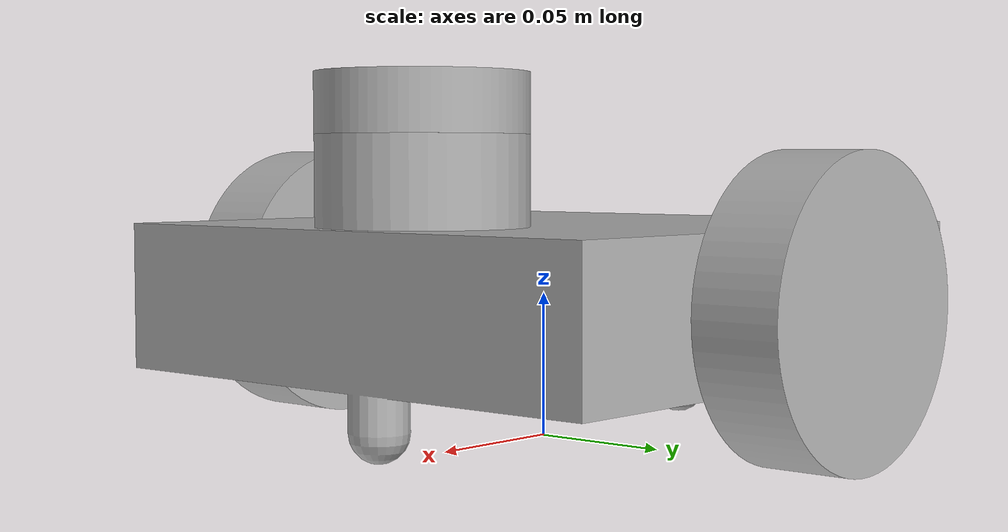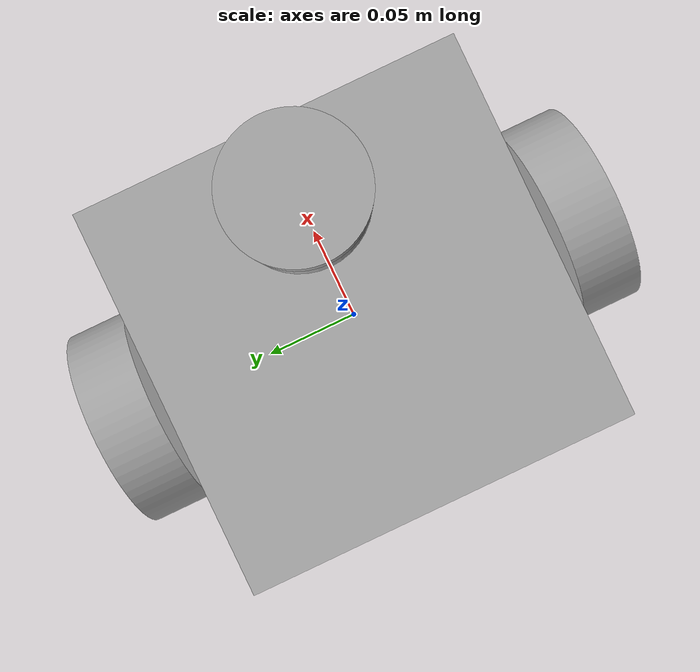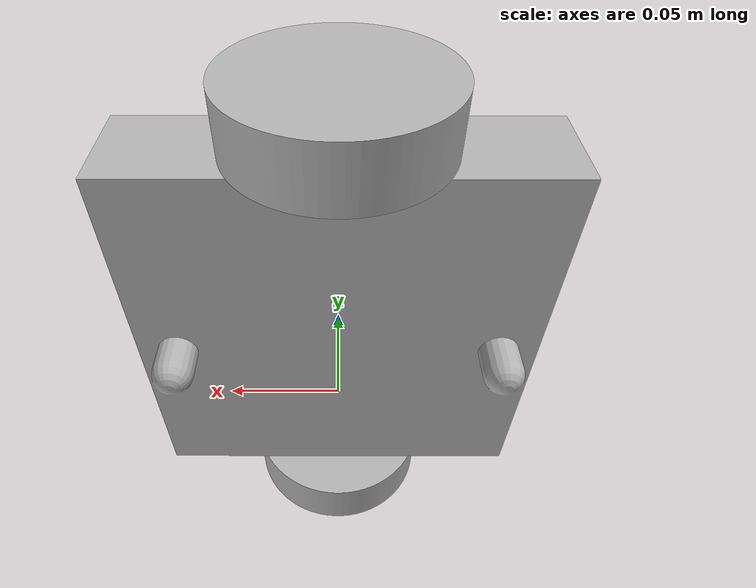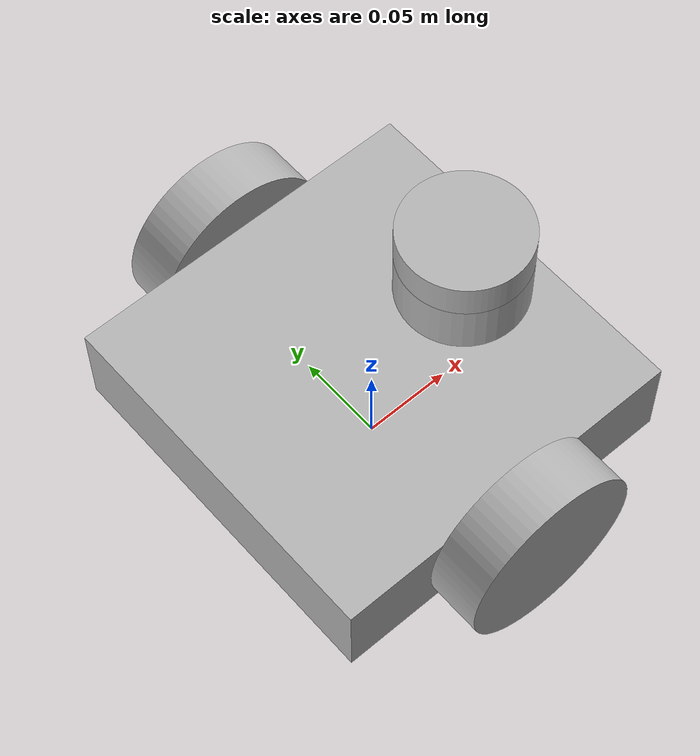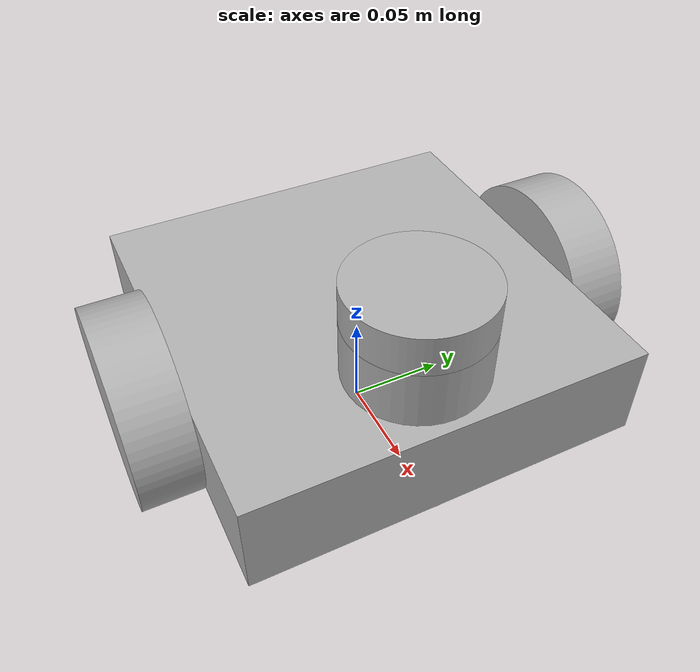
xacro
<?xml version="1.0" ?>
<robot name="amr" xmlns:xacro="http://www.ros.org/wiki/xacro">

  <xacro:include filename="$(find amr)/urdf/materials.xacro" />
  <xacro:include filename="$(find amr)/urdf/robot.trans" />
  <xacro:include filename="$(find amr)/urdf/diff_drive_plugin.xacro" />
  <xacro:include filename="$(find amr)/urdf/lidar_plugin.xacro" />

  <link name="base_link">
    <inertial>
      <origin xyz="0.0032536371479730836 1.7087196595133478e-17 0.05193914806588865" rpy="0 0 0"/>
      <mass value="16.713176720752102"/>
      <inertia ixx="0.057482" iyy="0.061252" izz="0.108997" ixy="0.0" iyz="0.0" ixz="-0.00207"/>
    </inertial>
    <visual>
      <origin xyz="0 0 0" rpy="0 0 0"/>
      <geometry>
        <mesh filename="file://$(find amr)/meshes/base_link.stl" scale="0.001 0.001 0.001"/>
      </geometry>
      <material name="silver"/>
    </visual>
    <collision>
      <origin xyz="0 0 0" rpy="0 0 0"/>
      <geometry>
        <mesh filename="file://$(find amr)/meshes/base_link.stl" scale="0.001 0.001 0.001"/>
      </geometry>
    </collision>
  </link>
  <link name="lidar_1">
    <inertial>
      <origin xyz="0.0 0.0 0.010000000000000009" rpy="0 0 0"/>
      <mass value="0.6042068071016571"/>
      <inertia ixx="0.000205" iyy="0.000205" izz="0.00037" ixy="-0.0" iyz="-0.0" ixz="0.0"/>
    </inertial>
    <visual>
      <origin xyz="-0.06 -0.0 -0.105" rpy="0 0 0"/>
      <geometry>
        <mesh filename="file://$(find amr)/meshes/lidar_1.stl" scale="0.001 0.001 0.001"/>
      </geometry>
      <material name="silver"/>
    </visual>
    <collision>
      <origin xyz="-0.06 -0.0 -0.105" rpy="0 0 0"/>
      <geometry>
        <mesh filename="file://$(find amr)/meshes/lidar_1.stl" scale="0.001 0.001 0.001"/>
      </geometry>
    </collision>
  </link>
  <link name="right_wheel_1">
    <inertial>
      <origin xyz="9.650038500203382e-18 -0.015000000000000013 6.938893903907228e-18" rpy="0 0 0"/>
      <mass value="1.8496126748009902"/>
      <inertia ixx="0.001295" iyy="0.002312" izz="0.001295" ixy="-0.0" iyz="0.0" ixz="0.0"/>
    </inertial>
    <visual>
      <origin xyz="-0.0 0.1 -0.05" rpy="0 0 0"/>
      <geometry>
        <mesh filename="file://$(find amr)/meshes/right_wheel_1.stl" scale="0.001 0.001 0.001"/>
      </geometry>
      <material name="silver"/>
    </visual>
    <collision>
      <origin xyz="-0.0 0.1 -0.05" rpy="0 0 0"/>
      <geometry>
        <mesh filename="file://$(find amr)/meshes/right_wheel_1.stl" scale="0.001 0.001 0.001"/>
      </geometry>
    </collision>
  </link>
  <link name="left_wheel_1">
    <inertial>
      <origin xyz="9.650038500203382e-18 0.014999999999999972 6.938893903907228e-18" rpy="0 0 0"/>
      <mass value="1.8496126748009902"/>
      <inertia ixx="0.001295" iyy="0.002312" izz="0.001295" ixy="0.0" iyz="-0.0" ixz="0.0"/>
    </inertial>
    <visual>
      <origin xyz="-0.0 -0.1 -0.05" rpy="0 0 0"/>
      <geometry>
        <mesh filename="file://$(find amr)/meshes/left_wheel_1.stl" scale="0.001 0.001 0.001"/>
      </geometry>
      <material name="silver"/>
    </visual>
    <collision>
      <origin xyz="-0.0 -0.1 -0.05" rpy="0 0 0"/>
      <geometry>
        <mesh filename="file://$(find amr)/meshes/left_wheel_1.stl" scale="0.001 0.001 0.001"/>
      </geometry>
    </collision>
  </link>
  <link name="base_footprint"></link>

  <joint name="Rigid_1" type="fixed">
    <origin xyz="0.06 0.0 0.105" rpy="0 0 0"/>
    <parent link="base_link"/>
    <child link="lidar_1"/>
  </joint>
  <joint name="Revolute2" type="continuous">
    <origin xyz="0.0 -0.1 0.05" rpy="0 0 0"/>
    <parent link="base_link"/>
    <child link="right_wheel_1"/>
    <axis xyz="0.0 1.0 0.0"/>
  </joint>
  <joint name="Revolute3" type="continuous">
    <origin xyz="0.0 0.1 0.05" rpy="0 0 0"/>
    <parent link="base_link"/>
    <child link="left_wheel_1"/>
    <axis xyz="0.0 1.0 0.0"/>
  </joint>
  <joint name="base_footprint_joint" type="fixed">
    <origin xyz="0 0 0" rpy="0 0 0"/>
    <parent link="base_link"/>
    <child link="base_footprint"/>
  </joint>

</robot>

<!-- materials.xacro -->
<robot name="amr" xmlns:xacro="http://www.ros.org/wiki/xacro" >
  <material name="silver">
    <color rgba="0.700 0.700 0.700 1.000"/>
  </material>
  <gazebo>
    <plugin name="control" filename="libgazebo_ros_control.so"/>
  </gazebo>
  <gazebo reference="base_link">
    <material>Silver</material>
    <mu1>0.1</mu1>
    <mu2>0.1</mu2>
    <self_collide>true</self_collide>
    <gravity>true</gravity>
  </gazebo>
  <gazebo reference="lidar_1">
    <material>Gazebo/Blue</material>
    <mu1>0.2</mu1>
    <mu2>0.2</mu2>
    <self_collide>true</self_collide>
  </gazebo>
  <gazebo reference="right_wheel_1">
    <material>Gazebo/Black</material>
    <mu1>1500</mu1>
    <mu2>1500</mu2>
    <self_collide>true</self_collide>
  </gazebo>
  <gazebo reference="left_wheel_1">
    <material>Gazebo/Black</material>
    <mu1>1500</mu1>
    <mu2>1500</mu2>
    <self_collide>true</self_collide>
  </gazebo>
  </robot>
